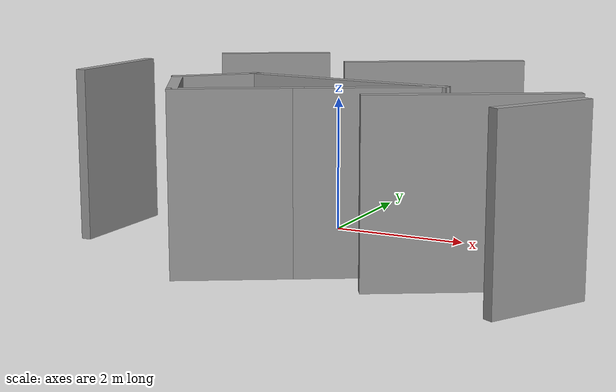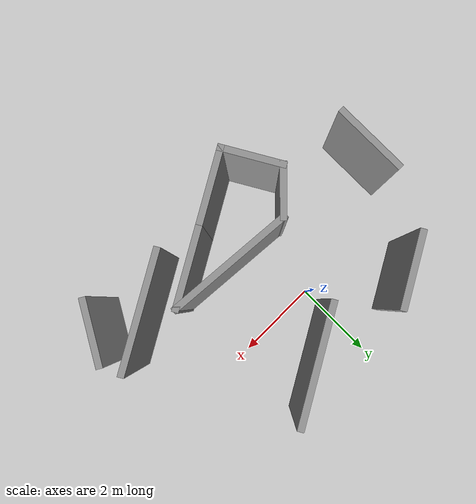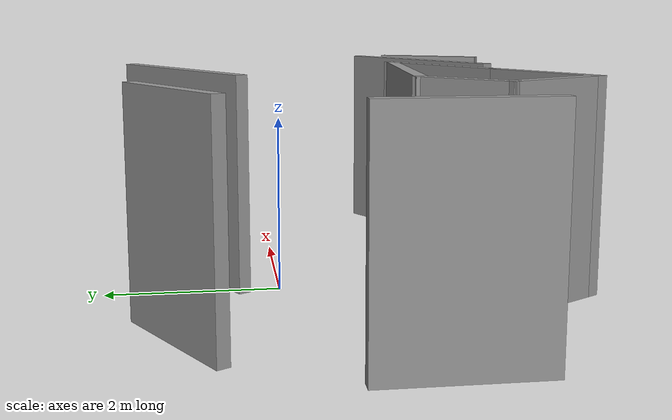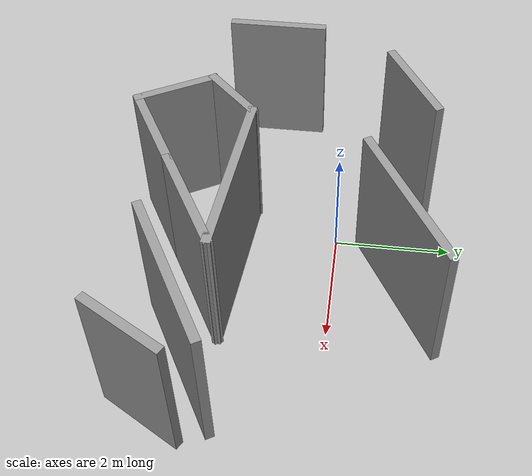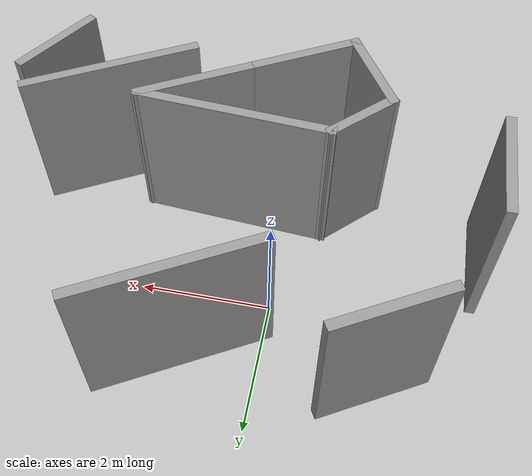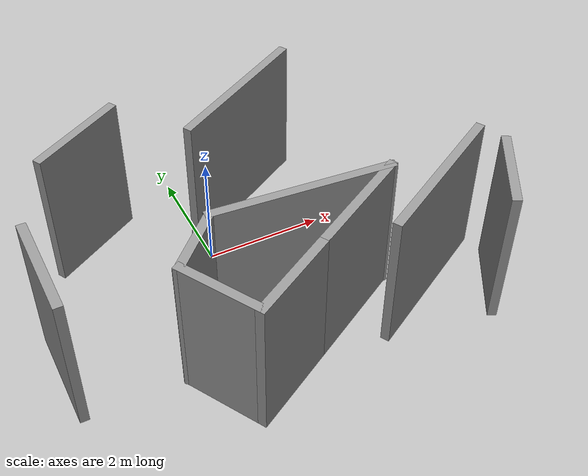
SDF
<?xml version='1.0'?>
<sdf version='1.7'>
  <model name='my_dummy_world'>
    <pose>0.611226 -0.86047 0 0 -0 0</pose>
    <link name='Wall_0'>
      <collision name='Wall_0_Collision'>
        <geometry>
          <box>
            <size>1.25 0.15 2.5</size>
          </box>
        </geometry>
        <pose>0 0 1.25 0 -0 0</pose>
      </collision>
      <visual name='Wall_0_Visual'>
        <pose>0 0 1.25 0 -0 0</pose>
        <geometry>
          <box>
            <size>1.25 0.15 2.5</size>
          </box>
        </geometry>
        <material>
          <script>
            <uri>file://media/materials/scripts/gazebo.material</uri>
            <name>Gazebo/Grey</name>
          </script>
          <ambient>1 1 1 1</ambient>
        </material>
        <meta>
          <layer>0</layer>
        </meta>
      </visual>
      <pose>-1.57014 -1.04844 0 0 -0 -2.35619</pose>
    </link>
    <link name='Wall_1'>
      <collision name='Wall_1_Collision'>
        <geometry>
          <box>
            <size>1.5 0.15 2.5</size>
          </box>
        </geometry>
        <pose>0 0 1.25 0 -0 0</pose>
      </collision>
      <visual name='Wall_1_Visual'>
        <pose>0 0 1.25 0 -0 0</pose>
        <geometry>
          <box>
            <size>1.5 0.15 2.5</size>
          </box>
        </geometry>
        <material>
          <script>
            <uri>file://media/materials/scripts/gazebo.material</uri>
            <name>Gazebo/Grey</name>
          </script>
          <ambient>1 1 1 1</ambient>
        </material>
        <meta>
          <layer>0</layer>
        </meta>
      </visual>
      <pose>-1.62154 -2.02191 0 0 -0 -1.0472</pose>
    </link>
    <link name='Wall_10'>
      <collision name='Wall_10_Collision'>
        <geometry>
          <box>
            <size>2.75 0.15 2.5</size>
          </box>
        </geometry>
        <pose>0 0 1.25 0 -0 0</pose>
      </collision>
      <visual name='Wall_10_Visual'>
        <pose>0 0 1.25 0 -0 0</pose>
        <geometry>
          <box>
            <size>2.75 0.15 2.5</size>
          </box>
        </geometry>
        <material>
          <script>
            <uri>file://media/materials/scripts/gazebo.material</uri>
            <name>Gazebo/Grey</name>
          </script>
          <ambient>1 1 1 1</ambient>
        </material>
        <meta>
          <layer>0</layer>
        </meta>
      </visual>
      <pose>2.27461 -1.36953 0 0 -0 0.523599</pose>
    </link>
    <link name='Wall_12'>
      <collision name='Wall_12_Collision'>
        <geometry>
          <box>
            <size>1.75 0.15 2.5</size>
          </box>
        </geometry>
        <pose>0 0 1.25 0 -0 0</pose>
      </collision>
      <visual name='Wall_12_Visual'>
        <pose>0 0 1.25 0 -0 0</pose>
        <geometry>
          <box>
            <size>1.75 0.15 2.5</size>
          </box>
        </geometry>
        <material>
          <script>
            <uri>file://media/materials/scripts/gazebo.material</uri>
            <name>Gazebo/Grey</name>
          </script>
          <ambient>1 1 1 1</ambient>
        </material>
        <meta>
          <layer>0</layer>
        </meta>
      </visual>
      <pose>-3.63123 -0.53953 0 0 -0 1.5708</pose>
    </link>
    <link name='Wall_15'>
      <collision name='Wall_15_Collision'>
        <geometry>
          <box>
            <size>1.75 0.15 2.5</size>
          </box>
        </geometry>
        <pose>0 0 1.25 0 -0 0</pose>
      </collision>
      <visual name='Wall_15_Visual'>
        <pose>0 0 1.25 0 -0 0</pose>
        <geometry>
          <box>
            <size>1.75 0.15 2.5</size>
          </box>
        </geometry>
        <material>
          <script>
            <uri>file://media/materials/scripts/gazebo.material</uri>
            <name>Gazebo/Grey</name>
          </script>
          <ambient>1 1 1 1</ambient>
        </material>
        <meta>
          <layer>0</layer>
        </meta>
      </visual>
      <pose>-2.2925 1.98785 0 0 -0 0.523599</pose>
    </link>
    <link name='Wall_17'>
      <collision name='Wall_17_Collision'>
        <geometry>
          <box>
            <size>2.75 0.15 2.5</size>
          </box>
        </geometry>
        <pose>0 0 1.25 0 -0 0</pose>
      </collision>
      <visual name='Wall_17_Visual'>
        <pose>0 0 1.25 0 -0 0</pose>
        <geometry>
          <box>
            <size>2.75 0.15 2.5</size>
          </box>
        </geometry>
        <material>
          <script>
            <uri>file://media/materials/scripts/gazebo.material</uri>
            <name>Gazebo/Grey</name>
          </script>
          <ambient>1 1 1 1</ambient>
        </material>
        <meta>
          <layer>0</layer>
        </meta>
      </visual>
      <pose>0.471422 1.95648 0 0 -0 0.523599</pose>
    </link>
    <link name='Wall_2'>
      <collision name='Wall_2_Collision'>
        <geometry>
          <box>
            <size>1.75 0.15 2.5</size>
          </box>
        </geometry>
        <pose>0 0 1.25 0 -0 0</pose>
      </collision>
      <visual name='Wall_2_Visual'>
        <pose>0 0 1.25 0 -0 0</pose>
        <geometry>
          <box>
            <size>1.75 0.15 2.5</size>
          </box>
        </geometry>
        <material>
          <script>
            <uri>file://media/materials/scripts/gazebo.material</uri>
            <name>Gazebo/Grey</name>
          </script>
          <ambient>1 1 1 1</ambient>
        </material>
        <meta>
          <layer>0</layer>
        </meta>
      </visual>
      <pose>-0.591223 -2.20648 0 0 -0 0.523599</pose>
    </link>
    <link name='Wall_3'>
      <collision name='Wall_3_Collision'>
        <geometry>
          <box>
            <size>2 0.15 2.5</size>
          </box>
        </geometry>
        <pose>0 0 1.25 0 -0 0</pose>
      </collision>
      <visual name='Wall_3_Visual'>
        <pose>0 0 1.25 0 -0 0</pose>
        <geometry>
          <box>
            <size>2 0.15 2.5</size>
          </box>
        </geometry>
        <material>
          <script>
            <uri>file://media/materials/scripts/gazebo.material</uri>
            <name>Gazebo/Grey</name>
          </script>
          <ambient>1 1 1 1</ambient>
        </material>
        <meta>
          <layer>0</layer>
        </meta>
      </visual>
      <pose>0.902671 -1.34398 0 0 -0 0.523599</pose>
    </link>
    <link name='Wall_4'>
      <collision name='Wall_4_Collision'>
        <geometry>
          <box>
            <size>3.0435 0.15 2.5</size>
          </box>
        </geometry>
        <pose>0 0 1.25 0 -0 0</pose>
      </collision>
      <visual name='Wall_4_Visual'>
        <pose>0 0 1.25 0 -0 0</pose>
        <geometry>
          <box>
            <size>3.0435 0.15 2.5</size>
          </box>
        </geometry>
        <material>
          <script>
            <uri>file://media/materials/scripts/gazebo.material</uri>
            <name>Gazebo/Grey</name>
          </script>
          <ambient>1 1 1 1</ambient>
        </material>
        <meta>
          <layer>0</layer>
        </meta>
      </visual>
      <pose>0.261259 -0.770506 0 0 -0 3.06481</pose>
    </link>
    <link name='Wall_5'>
      <collision name='Wall_5_Collision'>
        <geometry>
          <box>
            <size>0.15 0.15 2.5</size>
          </box>
        </geometry>
        <pose>0 0 1.25 0 -0 0</pose>
      </collision>
      <visual name='Wall_5_Visual'>
        <pose>0 0 1.25 0 -0 0</pose>
        <geometry>
          <box>
            <size>0.15 0.15 2.5</size>
          </box>
        </geometry>
        <material>
          <script>
            <uri>file://media/materials/scripts/gazebo.material</uri>
            <name>Gazebo/Grey</name>
          </script>
          <ambient>1 1 1 1</ambient>
        </material>
        <meta>
          <layer>0</layer>
        </meta>
      </visual>
      <pose>-1.18123 -0.65953 0 0 -0 0</pose>
    </link>
    <link name='Wall_6'>
      <collision name='Wall_6_Collision'>
        <geometry>
          <box>
            <size>0.15 0.15 2.5</size>
          </box>
        </geometry>
        <pose>0 0 1.25 0 -0 0</pose>
      </collision>
      <visual name='Wall_6_Visual'>
        <pose>0 0 1.25 0 -0 0</pose>
        <geometry>
          <box>
            <size>0.15 0.15 2.5</size>
          </box>
        </geometry>
        <material>
          <script>
            <uri>file://media/materials/scripts/gazebo.material</uri>
            <name>Gazebo/Grey</name>
          </script>
          <ambient>1 1 1 1</ambient>
        </material>
        <meta>
          <layer>0</layer>
        </meta>
      </visual>
      <pose>-1.18123 -0.65953 0 0 -0 0</pose>
    </link>
    <link name='Wall_8'>
      <collision name='Wall_8_Collision'>
        <geometry>
          <box>
            <size>1.5 0.15 2.5</size>
          </box>
        </geometry>
        <pose>0 0 1.25 0 -0 0</pose>
      </collision>
      <visual name='Wall_8_Visual'>
        <pose>0 0 1.25 0 -0 0</pose>
        <geometry>
          <box>
            <size>1.5 0.15 2.5</size>
          </box>
        </geometry>
        <material>
          <script>
            <uri>file://media/materials/scripts/gazebo.material</uri>
            <name>Gazebo/Grey</name>
          </script>
          <ambient>1 1 1 1</ambient>
        </material>
        <meta>
          <layer>0</layer>
        </meta>
      </visual>
      <pose>3.26627 -1.75496 0 0 -0 1.0472</pose>
    </link>
    <static>1</static>
  </model>
</sdf>
